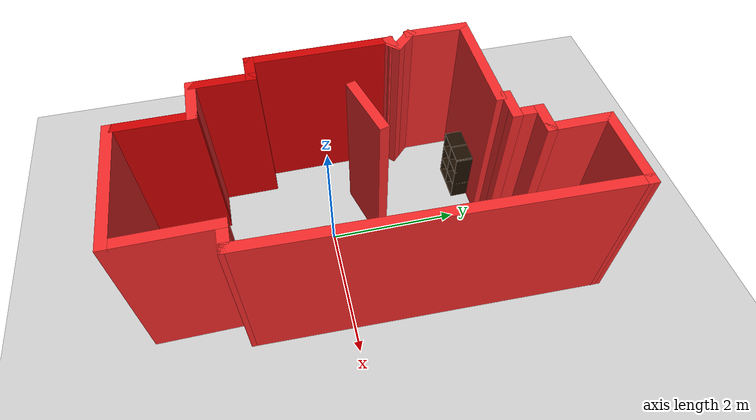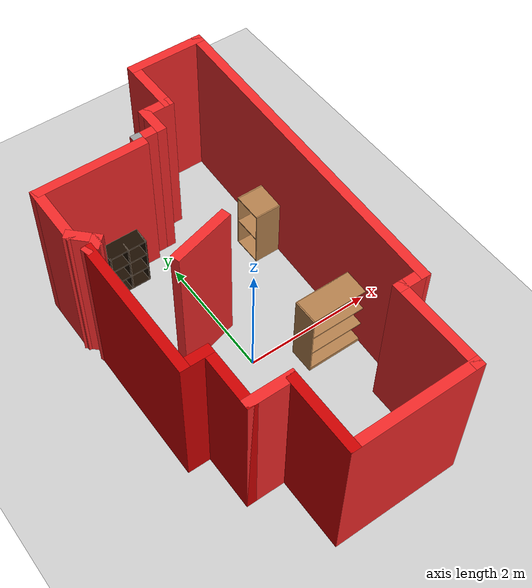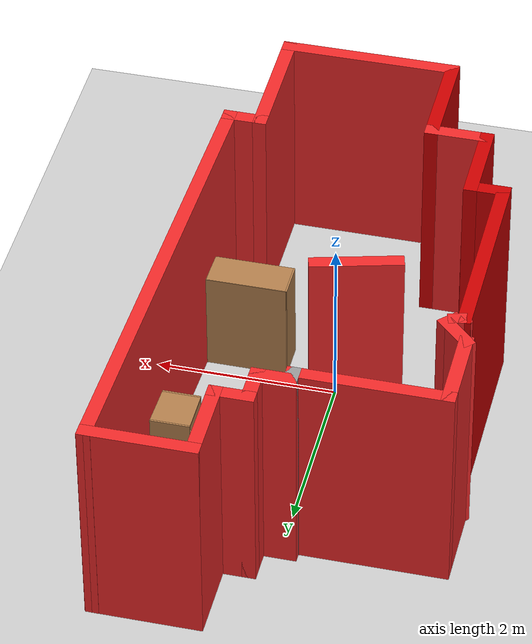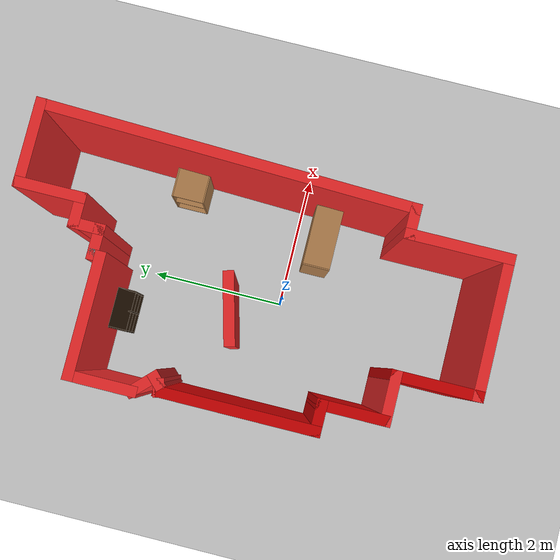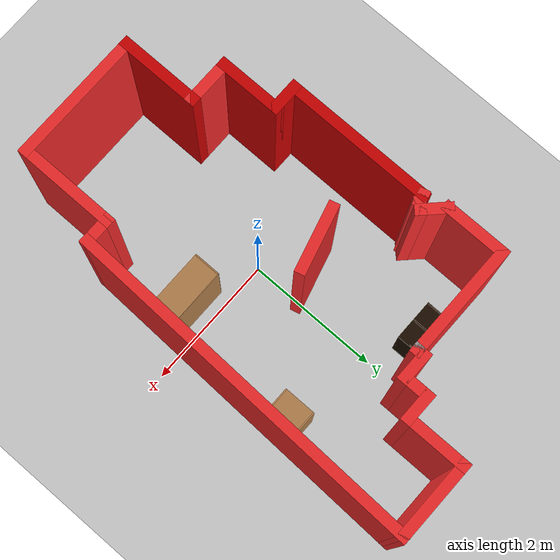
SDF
<sdf version="1.6">
 <world name="default">
  <light name="sun" type="directional">
   <pose>0 0 10 0 -0 0</pose>
   <diffuse>0.8 0.8 0.8 1</diffuse>
   <specular>0.2 0.2 0.2 1</specular>
   <attenuation>
    <range>1000</range>
    <constant>0.9</constant>
    <linear>0.01</linear>
    <quadratic>0.001</quadratic>
   </attenuation>
   <direction>-0.5 0.1 -0.9</direction>
  </light>
  <model name="ground_plane">
   <static>1</static>
   <link name="link">
    <collision name="collision">
     <geometry><plane><normal>0 0 1</normal><size>100 100</size></plane></geometry>
     <surface><friction><ode><mu>100</mu><mu2>50</mu2></ode></friction></surface>
    </collision>
    <visual name="visual">
     <cast_shadows>0</cast_shadows>
     <geometry><plane><normal>0 0 1</normal><size>100 100</size></plane></geometry>
     <material>
      <script><uri>file://media/materials/scripts/gazebo.material</uri><name>Gazebo/Grey</name></script>
     </material>
    </visual>
   </link>
  </model>
  <gravity>0 0 -9.8</gravity>
  <magnetic_field>6e-06 2.3e-05 -4.2e-05</magnetic_field>
  <atmosphere type="adiabatic"/>
  <physics name="default_physics" default="0" type="ode">
   <max_step_size>0.001</max_step_size>
   <real_time_factor>1</real_time_factor>
   <real_time_update_rate>1000</real_time_update_rate>
  </physics>
  <scene><ambient>0.4 0.4 0.4 1</ambient><background>0.7 0.7 0.7 1</background><shadows>1</shadows></scene>
  <spherical_coordinates>
   <surface_model>EARTH_WGS84</surface_model>
   <latitude_deg>0</latitude_deg>
   <longitude_deg>0</longitude_deg>
   <elevation>0</elevation>
   <heading_deg>0</heading_deg>
  </spherical_coordinates>
  <model name="map_2">
   <pose>-0.028238 0.490679 0 0 -0 0</pose>
   <link name="Wall_10">
    <collision name="Wall_10_Collision">
     <geometry><box><size>0.5 0.15 2.5</size></box></geometry>
     <pose>0 0 1.25 0 -0 0</pose>
    </collision>
    <visual name="Wall_10_Visual">
     <pose>0 0 1.25 0 -0 0</pose>
     <geometry><box><size>0.5 0.15 2.5</size></box></geometry>
     <material>
      <script><uri>file://media/materials/scripts/gazebo.material</uri><name>Gazebo/Grey</name></script>
      <ambient>0.937255 0.160784 0.160784 1</ambient>
     </material>
     <meta><layer>0</layer></meta>
    </visual>
    <pose>-1.56193 0.997091 0 0 -0 -0.785398</pose>
   </link>
   <link name="Wall_11">
    <collision name="Wall_11_Collision">
     <geometry><box><size>0.25 0.15 2.5</size></box></geometry>
     <pose>0 0 1.25 0 -0 0</pose>
    </collision>
    <visual name="Wall_11_Visual">
     <pose>0 0 1.25 0 -0 0</pose>
     <geometry><box><size>0.25 0.15 2.5</size></box></geometry>
     <material>
      <script><uri>file://media/materials/scripts/gazebo.material</uri><name>Gazebo/Grey</name></script>
      <ambient>0.937255 0.160784 0.160784 1</ambient>
     </material>
     <meta><layer>0</layer></meta>
    </visual>
    <pose>-1.47354 0.837992 0 0 -0 -2.35619</pose>
   </link>
   <link name="Wall_12">
    <collision name="Wall_12_Collision">
     <geometry><box><size>0.25 0.15 2.5</size></box></geometry>
     <pose>0 0 1.25 0 -0 0</pose>
    </collision>
    <visual name="Wall_12_Visual">
     <pose>0 0 1.25 0 -0 0</pose>
     <geometry><box><size>0.25 0.15 2.5</size></box></geometry>
     <material>
      <script><uri>file://media/materials/scripts/gazebo.material</uri><name>Gazebo/Grey</name></script>
      <ambient>0.937255 0.160784 0.160784 1</ambient>
     </material>
     <meta><layer>0</layer></meta>
    </visual>
    <pose>-1.55719 0.789695 0 0 -0 -2.87979</pose>
   </link>
   <link name="Wall_13">
    <collision name="Wall_13_Collision">
     <geometry><box><size>2.25 0.15 2.5</size></box></geometry>
     <pose>0 0 1.25 0 -0 0</pose>
    </collision>
    <visual name="Wall_13_Visual">
     <pose>0 0 1.25 0 -0 0</pose>
     <geometry><box><size>2.25 0.15 2.5</size></box></geometry>
     <material>
      <script><uri>file://media/materials/scripts/gazebo.material</uri><name>Gazebo/Grey</name></script>
      <ambient>0.8 0 0 1</ambient>
     </material>
     <meta><layer>0</layer></meta>
    </visual>
    <pose>-1.60549 -0.273245 0 0 -0 -1.5708</pose>
   </link>
   <link name="Wall_14">
    <collision name="Wall_14_Collision">
     <geometry><box><size>0.5 0.15 2.5</size></box></geometry>
     <pose>0 0 1.25 0 -0 0</pose>
    </collision>
    <visual name="Wall_14_Visual">
     <pose>0 0 1.25 0 -0 0</pose>
     <geometry><box><size>0.5 0.15 2.5</size></box></geometry>
     <material>
      <script><uri>file://media/materials/scripts/gazebo.material</uri><name>Gazebo/Grey</name></script>
      <ambient>0.8 0 0 1</ambient>
     </material>
     <meta><layer>0</layer></meta>
    </visual>
    <pose>-1.43049 -1.32325 0 0 -0 0</pose>
   </link>
   <link name="Wall_16">
    <collision name="Wall_16_Collision">
     <geometry><box><size>1 0.15 2.5</size></box></geometry>
     <pose>0 0 1.25 0 -0 0</pose>
    </collision>
    <visual name="Wall_16_Visual">
     <pose>0 0 1.25 0 -0 0</pose>
     <geometry><box><size>1 0.15 2.5</size></box></geometry>
     <material>
      <script><uri>file://media/materials/scripts/gazebo.material</uri><name>Gazebo/Grey</name></script>
      <ambient>0.8 0 0 1</ambient>
     </material>
     <meta><layer>0</layer></meta>
    </visual>
    <pose>-1.25549 -1.74825 0 0 -0 -1.5708</pose>
   </link>
   <link name="Wall_17">
    <collision name="Wall_17_Collision">
     <geometry><box><size>0.75 0.15 2.5</size></box></geometry>
     <pose>0 0 1.25 0 -0 0</pose>
    </collision>
    <visual name="Wall_17_Visual">
     <pose>0 0 1.25 0 -0 0</pose>
     <geometry><box><size>0.75 0.15 2.5</size></box></geometry>
     <material>
      <script><uri>file://media/materials/scripts/gazebo.material</uri><name>Gazebo/Grey</name></script>
      <ambient>0.937255 0.160784 0.160784 1</ambient>
     </material>
     <meta><layer>0</layer></meta>
    </visual>
    <pose>-0.955488 -2.17325 0 0 -0 0</pose>
   </link>
   <link name="Wall_18">
    <collision name="Wall_18_Collision">
     <geometry><box><size>1.25 0.15 2.5</size></box></geometry>
     <pose>0 0 1.25 0 -0 0</pose>
    </collision>
    <visual name="Wall_18_Visual">
     <pose>0 0 1.25 0 -0 0</pose>
     <geometry><box><size>1.25 0.15 2.5</size></box></geometry>
     <material>
      <script><uri>file://media/materials/scripts/gazebo.material</uri><name>Gazebo/Grey</name></script>
      <ambient>0.8 0 0 1</ambient>
     </material>
     <meta><layer>0</layer></meta>
    </visual>
    <pose>-0.655488 -2.72324 0 0 -0 -1.5708</pose>
   </link>
   <link name="Wall_19">
    <collision name="Wall_19_Collision">
     <geometry><box><size>2 0.15 2.5</size></box></geometry>
     <pose>0 0 1.25 0 -0 0</pose>
    </collision>
    <visual name="Wall_19_Visual">
     <pose>0 0 1.25 0 -0 0</pose>
     <geometry><box><size>2 0.15 2.5</size></box></geometry>
     <material>
      <script><uri>file://media/materials/scripts/gazebo.material</uri><name>Gazebo/Grey</name></script>
      <ambient>0.937255 0.160784 0.160784 1</ambient>
     </material>
     <meta><layer>0</layer></meta>
    </visual>
    <pose>0.269512 -3.27325 0 0 -0 0</pose>
   </link>
   <link name="Wall_2">
    <collision name="Wall_2_Collision">
     <geometry><box><size>1.25 0.15 2.5</size></box></geometry>
     <pose>0 0 1.25 0 -0 0</pose>
    </collision>
    <visual name="Wall_2_Visual">
     <pose>0 0 1.25 0 -0 0</pose>
     <geometry><box><size>1.25 0.15 2.5</size></box></geometry>
     <material>
      <script><uri>file://media/materials/scripts/gazebo.material</uri><name>Gazebo/Grey</name></script>
      <ambient>0.937255 0.160784 0.160784 1</ambient>
     </material>
     <meta><layer>0</layer></meta>
    </visual>
    <pose>1.16433 3.27083 0 0 -0 3.14159</pose>
   </link>
   <link name="Wall_20">
    <collision name="Wall_20_Collision">
     <geometry><box><size>1.5 0.15 2.5</size></box></geometry>
     <pose>0 0 1.25 0 -0 0</pose>
    </collision>
    <visual name="Wall_20_Visual">
     <pose>0 0 1.25 0 -0 0</pose>
     <geometry><box><size>1.5 0.15 2.5</size></box></geometry>
     <material>
      <script><uri>file://media/materials/scripts/gazebo.material</uri><name>Gazebo/Grey</name></script>
      <ambient>0.937255 0.160784 0.160784 1</ambient>
     </material>
     <meta><layer>0</layer></meta>
    </visual>
    <pose>1.19451 -2.59824 0 0 -0 1.5708</pose>
   </link>
   <link name="Wall_21">
    <collision name="Wall_21_Collision">
     <geometry><box><size>0.5 0.15 2.5</size></box></geometry>
     <pose>0 0 1.25 0 -0 0</pose>
    </collision>
    <visual name="Wall_21_Visual">
     <pose>0 0 1.25 0 -0 0</pose>
     <geometry><box><size>0.5 0.15 2.5</size></box></geometry>
     <material>
      <script><uri>file://media/materials/scripts/gazebo.material</uri><name>Gazebo/Grey</name></script>
      <ambient>0.937255 0.160784 0.160784 1</ambient>
     </material>
     <meta><layer>0</layer></meta>
    </visual>
    <pose>1.36951 -1.92325 0 0 -0 0</pose>
   </link>
   <link name="Wall_26">
    <collision name="Wall_26_Collision">
     <geometry><box><size>5.34685 0.15 2.5</size></box></geometry>
     <pose>0 0 1.25 0 -0 0</pose>
    </collision>
    <visual name="Wall_26_Visual">
     <pose>0 0 1.25 0 -0 0</pose>
     <geometry><box><size>5.34685 0.15 2.5</size></box></geometry>
     <material>
      <script><uri>file://media/materials/scripts/gazebo.material</uri><name>Gazebo/Grey</name></script>
      <ambient>0.937255 0.160784 0.160784 1</ambient>
     </material>
     <meta><layer>0</layer></meta>
    </visual>
    <pose>1.62942 0.673794 0 0 -0 1.53811</pose>
   </link>
   <link name="Wall_28">
    <collision name="Wall_28_Collision">
     <geometry><box><size>1 0.15 2.5</size></box></geometry>
     <pose>0 0 1.25 0 -0 0</pose>
    </collision>
    <visual name="Wall_28_Visual">
     <pose>0 0 1.25 0 -0 0</pose>
     <geometry><box><size>1 0.15 2.5</size></box></geometry>
     <material>
      <script><uri>file://media/materials/scripts/gazebo.material</uri><name>Gazebo/Grey</name></script>
      <ambient>0.937255 0.160784 0.160784 1</ambient>
     </material>
     <meta><layer>0</layer></meta>
    </visual>
    <pose>-0.336228 0.155767 0 0 -0 0.261799</pose>
   </link>
   <link name="Wall_3">
    <collision name="Wall_3_Collision">
     <geometry><box><size>1 0.15 2.5</size></box></geometry>
     <pose>0 0 1.25 0 -0 0</pose>
    </collision>
    <visual name="Wall_3_Visual">
     <pose>0 0 1.25 0 -0 0</pose>
     <geometry><box><size>1 0.15 2.5</size></box></geometry>
     <material>
      <script><uri>file://media/materials/scripts/gazebo.material</uri><name>Gazebo/Grey</name></script>
      <ambient>0.937255 0.160784 0.160784 1</ambient>
     </material>
     <meta><layer>0</layer></meta>
    </visual>
    <pose>0.614328 2.84583 0 0 -0 -1.5708</pose>
   </link>
   <link name="Wall_4">
    <collision name="Wall_4_Collision">
     <geometry><box><size>0.5 0.15 2.5</size></box></geometry>
     <pose>0 0 1.25 0 -0 0</pose>
    </collision>
    <visual name="Wall_4_Visual">
     <pose>0 0 1.25 0 -0 0</pose>
     <geometry><box><size>0.5 0.15 2.5</size></box></geometry>
     <material>
      <script><uri>file://media/materials/scripts/gazebo.material</uri><name>Gazebo/Grey</name></script>
      <ambient>0.937255 0.160784 0.160784 1</ambient>
     </material>
     <meta><layer>0</layer></meta>
    </visual>
    <pose>0.439328 2.42083 0 0 -0 3.14159</pose>
   </link>
   <link name="Wall_5">
    <collision name="Wall_5_Collision">
     <geometry><box><size>0.5 0.15 2.5</size></box></geometry>
     <pose>0 0 1.25 0 -0 0</pose>
    </collision>
    <visual name="Wall_5_Visual">
     <pose>0 0 1.25 0 -0 0</pose>
     <geometry><box><size>0.5 0.15 2.5</size></box></geometry>
     <material>
      <script><uri>file://media/materials/scripts/gazebo.material</uri><name>Gazebo/Grey</name></script>
      <ambient>0.937255 0.160784 0.160784 1</ambient>
     </material>
     <meta><layer>0</layer></meta>
    </visual>
    <pose>0.264328 2.24583 0 0 -0 -1.5708</pose>
   </link>
   <link name="Wall_6">
    <collision name="Wall_6_Collision">
     <geometry><box><size>0.5 0.15 2.5</size></box></geometry>
     <pose>0 0 1.25 0 -0 0</pose>
    </collision>
    <visual name="Wall_6_Visual">
     <pose>0 0 1.25 0 -0 0</pose>
     <geometry><box><size>0.5 0.15 2.5</size></box></geometry>
     <material>
      <script><uri>file://media/materials/scripts/gazebo.material</uri><name>Gazebo/Grey</name></script>
      <ambient>0.937255 0.160784 0.160784 1</ambient>
     </material>
     <meta><layer>0</layer></meta>
    </visual>
    <pose>0.089328 2.07084 0 0 -0 3.14159</pose>
   </link>
   <link name="Wall_7">
    <collision name="Wall_7_Collision">
     <geometry><box><size>0.25 0.15 2.5</size></box></geometry>
     <pose>0 0 1.25 0 -0 0</pose>
    </collision>
    <visual name="Wall_7_Visual">
     <pose>0 0 1.25 0 -0 0</pose>
     <geometry><box><size>0.25 0.15 2.5</size></box></geometry>
     <material>
      <script><uri>file://media/materials/scripts/gazebo.material</uri><name>Gazebo/Grey</name></script>
      <ambient>1 1 1 1</ambient>
     </material>
     <meta><layer>0</layer></meta>
    </visual>
    <pose>-0.085672 2.02083 0 0 -0 -1.5708</pose>
   </link>
   <link name="Wall_8">
    <collision name="Wall_8_Collision">
     <geometry><box><size>1.75 0.15 2.5</size></box></geometry>
     <pose>0 0 1.25 0 -0 0</pose>
    </collision>
    <visual name="Wall_8_Visual">
     <pose>0 0 1.25 0 -0 0</pose>
     <geometry><box><size>1.75 0.15 2.5</size></box></geometry>
     <material>
      <script><uri>file://media/materials/scripts/gazebo.material</uri><name>Gazebo/Grey</name></script>
      <ambient>0.937255 0.160784 0.160784 1</ambient>
     </material>
     <meta><layer>0</layer></meta>
    </visual>
    <pose>-0.885672 1.97083 0 0 -0 3.14159</pose>
   </link>
   <link name="Wall_9">
    <collision name="Wall_9_Collision">
     <geometry><box><size>1 0.15 2.5</size></box></geometry>
     <pose>0 0 1.25 0 -0 0</pose>
    </collision>
    <visual name="Wall_9_Visual">
     <pose>0 0 1.25 0 -0 0</pose>
     <geometry><box><size>1 0.15 2.5</size></box></geometry>
     <material>
      <script><uri>file://media/materials/scripts/gazebo.material</uri><name>Gazebo/Grey</name></script>
      <ambient>0.937255 0.160784 0.160784 1</ambient>
     </material>
     <meta><layer>0</layer></meta>
    </visual>
    <pose>-1.68567 1.54583 0 0 -0 -1.5708</pose>
   </link>
   <static>1</static>
  </model>
  <model name="6_Cube_StorageE">
   <link name="Wall_0">
    <pose>0 0 0.01 0 -0 0</pose>
    <inertial>
     <mass>1.6201</mass>
     <inertia><ixx>0.0119</ixx><iyy>0.0631</iyy><izz>0.0513</izz><ixy>0</ixy><ixz>0</ixz><iyz>0</iyz></inertia>
    </inertial>
    <collision name="Wall_0_Collision"><geometry><box><size>0.616 0.296 0.02</size></box></geometry></collision>
    <visual name="Wall_0_Visual">
     <geometry><box><size>0.616 0.296 0.02</size></box></geometry>
     <material>
      <script><uri>file://media/materials/scripts/gazebo.material</uri><name>Gazebo/Grey</name></script>
      <ambient>0.105882 0.0509804 0 1</ambient>
     </material>
    </visual>
   </link>
   <joint name="0_2" type="fixed">
    <pose>-0.308 0 0 0 -0 0</pose>
    <parent>Wall_2</parent>
    <child>Wall_0</child>
    <axis>
     <xyz>1 0 0</xyz>
     <use_parent_model_frame>0</use_parent_model_frame>
     <limit><lower>-1e+16</lower><upper>1e+16</upper></limit>
    </axis>
   </joint>
   <joint name="0_12" type="fixed">
    <parent>Wall_12</parent>
    <child>Wall_0</child>
    <axis>
     <xyz>0 0 1</xyz>
     <use_parent_model_frame>0</use_parent_model_frame>
     <limit><lower>-1e+16</lower><upper>1e+16</upper></limit>
    </axis>
   </joint>
   <joint name="0_4" type="fixed">
    <pose>0.308 0 0 0 -0 0</pose>
    <parent>Wall_4</parent>
    <child>Wall_0</child>
    <axis>
     <xyz>1 0 0</xyz>
     <use_parent_model_frame>0</use_parent_model_frame>
     <limit><lower>-1e+16</lower><upper>1e+16</upper></limit>
    </axis>
   </joint>
   <link name="Wall_10">
    <pose>0 0 0.61 0 -0 0</pose>
    <inertial>
     <mass>1.6201</mass>
     <inertia><ixx>0.0119</ixx><iyy>0.0631</iyy><izz>0.0513</izz><ixy>0</ixy><ixz>0</ixz><iyz>0</iyz></inertia>
    </inertial>
    <collision name="Wall_10_Collision"><geometry><box><size>0.616 0.296 0.02</size></box></geometry></collision>
    <visual name="Wall_10_Visual">
     <geometry><box><size>0.616 0.296 0.02</size></box></geometry>
     <material>
      <script><uri>file://media/materials/scripts/gazebo.material</uri><name>Gazebo/Grey</name></script>
      <ambient>0.105882 0.0509804 0 1</ambient>
     </material>
    </visual>
   </link>
   <joint name="10_2" type="fixed">
    <pose>-0.308 0 0 0 -0 0</pose>
    <parent>Wall_2</parent>
    <child>Wall_10</child>
    <axis>
     <xyz>1 0 0</xyz>
     <use_parent_model_frame>0</use_parent_model_frame>
     <limit><lower>-1e+16</lower><upper>1e+16</upper></limit>
    </axis>
   </joint>
   <joint name="10_12" type="fixed">
    <parent>Wall_12</parent>
    <child>Wall_10</child>
    <axis>
     <xyz>0 0 1</xyz>
     <use_parent_model_frame>0</use_parent_model_frame>
     <limit><lower>-1e+16</lower><upper>1e+16</upper></limit>
    </axis>
   </joint>
   <joint name="10_4" type="fixed">
    <pose>0.308 0 0 0 -0 0</pose>
    <parent>Wall_4</parent>
    <child>Wall_10</child>
    <axis>
     <xyz>1 0 0</xyz>
     <use_parent_model_frame>0</use_parent_model_frame>
     <limit><lower>-1e+16</lower><upper>1e+16</upper></limit>
    </axis>
   </joint>
   <link name="Wall_12">
    <pose>0 0 0.4575 0 -0 0</pose>
    <inertial>
     <mass>2.4065</mass>
     <inertia><ixx>0.0177</ixx><iyy>0.1855</iyy><izz>0.168</izz><ixy>0</ixy><ixz>0</ixz><iyz>0</iyz></inertia>
    </inertial>
    <collision name="Wall_12_Collision"><geometry><box><size>0.02 0.296 0.915</size></box></geometry></collision>
    <visual name="Wall_12_Visual">
     <geometry><box><size>0.02 0.296 0.915</size></box></geometry>
     <material>
      <script><uri>file://media/materials/scripts/gazebo.material</uri><name>Gazebo/Grey</name></script>
      <ambient>0.105882 0.0509804 0 1</ambient>
     </material>
    </visual>
   </link>
   <link name="Wall_2">
    <pose>-0.298 0 0.4575 0 -0 0</pose>
    <inertial>
     <mass>2.4065</mass>
     <inertia><ixx>0.0177</ixx><iyy>0.1855</iyy><izz>0.168</izz><ixy>0</ixy><ixz>0</ixz><iyz>0</iyz></inertia>
    </inertial>
    <collision name="Wall_2_Collision"><geometry><box><size>0.02 0.296 0.915</size></box></geometry></collision>
    <visual name="Wall_2_Visual">
     <geometry><box><size>0.02 0.296 0.915</size></box></geometry>
     <material>
      <script><uri>file://media/materials/scripts/gazebo.material</uri><name>Gazebo/Grey</name></script>
      <ambient>0.105882 0.0509804 0 1</ambient>
     </material>
    </visual>
   </link>
   <link name="Wall_4">
    <pose>0.298 0 0.4575 0 -0 0</pose>
    <inertial>
     <mass>2.4065</mass>
     <inertia><ixx>0.0177</ixx><iyy>0.1855</iyy><izz>0.168</izz><ixy>0</ixy><ixz>0</ixz><iyz>0</iyz></inertia>
    </inertial>
    <collision name="Wall_4_Collision"><geometry><box><size>0.02 0.296 0.915</size></box></geometry></collision>
    <visual name="Wall_4_Visual">
     <geometry><box><size>0.02 0.296 0.915</size></box></geometry>
     <material>
      <script><uri>file://media/materials/scripts/gazebo.material</uri><name>Gazebo/Grey</name></script>
      <ambient>0.105882 0.0509804 0 1</ambient>
     </material>
    </visual>
   </link>
   <link name="Wall_6">
    <pose>0 0 0.905 0 -0 0</pose>
    <inertial>
     <mass>1.6201</mass>
     <inertia><ixx>0.0119</ixx><iyy>0.0631</iyy><izz>0.0513</izz><ixy>0</ixy><ixz>0</ixz><iyz>0</iyz></inertia>
    </inertial>
    <collision name="Wall_6_Collision"><geometry><box><size>0.616 0.296 0.02</size></box></geometry></collision>
    <visual name="Wall_6_Visual">
     <geometry><box><size>0.616 0.296 0.02</size></box></geometry>
     <material>
      <script><uri>file://media/materials/scripts/gazebo.material</uri><name>Gazebo/Grey</name></script>
      <ambient>0.105882 0.0509804 0 1</ambient>
     </material>
    </visual>
   </link>
   <joint name="6_2" type="fixed">
    <pose>-0.308 0 0 0 -0 0</pose>
    <parent>Wall_2</parent>
    <child>Wall_6</child>
    <axis>
     <xyz>2 0 0</xyz>
     <use_parent_model_frame>0</use_parent_model_frame>
     <limit><lower>-1e+16</lower><upper>1e+16</upper></limit>
    </axis>
   </joint>
   <joint name="6_12" type="fixed">
    <parent>Wall_12</parent>
    <child>Wall_6</child>
    <axis>
     <xyz>0 0 1</xyz>
     <use_parent_model_frame>0</use_parent_model_frame>
     <limit><lower>-1e+16</lower><upper>1e+16</upper></limit>
    </axis>
   </joint>
   <joint name="6_4" type="fixed">
    <pose>0.308 0 0 0 -0 0</pose>
    <parent>Wall_4</parent>
    <child>Wall_6</child>
    <axis>
     <xyz>1 0 0</xyz>
     <use_parent_model_frame>0</use_parent_model_frame>
     <limit><lower>-1e+16</lower><upper>1e+16</upper></limit>
    </axis>
   </joint>
   <link name="Wall_8">
    <pose>0 0 0.305 0 -0 0</pose>
    <inertial>
     <mass>1.6201</mass>
     <inertia><ixx>0.0119</ixx><iyy>0.0631</iyy><izz>0.0513</izz><ixy>0</ixy><ixz>0</ixz><iyz>0</iyz></inertia>
    </inertial>
    <collision name="Wall_8_Collision"><geometry><box><size>0.616 0.296 0.02</size></box></geometry></collision>
    <visual name="Wall_8_Visual">
     <geometry><box><size>0.616 0.296 0.02</size></box></geometry>
     <material>
      <script><uri>file://media/materials/scripts/gazebo.material</uri><name>Gazebo/Grey</name></script>
      <ambient>0.105882 0.0509804 0 1</ambient>
     </material>
    </visual>
   </link>
   <joint name="8_2" type="fixed">
    <pose>-0.308 0 0 0 -0 0</pose>
    <parent>Wall_2</parent>
    <child>Wall_8</child>
    <axis>
     <xyz>1 0 0</xyz>
     <use_parent_model_frame>0</use_parent_model_frame>
     <limit><lower>-1e+16</lower><upper>1e+16</upper></limit>
    </axis>
   </joint>
   <joint name="8_12" type="fixed">
    <parent>Wall_12</parent>
    <child>Wall_8</child>
    <axis>
     <xyz>0 0 1</xyz>
     <use_parent_model_frame>0</use_parent_model_frame>
     <limit><lower>-1e+16</lower><upper>1e+16</upper></limit>
    </axis>
   </joint>
   <joint name="8_4" type="fixed">
    <pose>0.308 0 0 0 -0 0</pose>
    <parent>Wall_4</parent>
    <child>Wall_8</child>
    <axis>
     <xyz>1 0 0</xyz>
     <use_parent_model_frame>0</use_parent_model_frame>
     <limit><lower>-1e+16</lower><upper>1e+16</upper></limit>
    </axis>
   </joint>
   <static>1</static>
   <pose>-0.689367 2.26455 0 0 -0 0</pose>
  </model>
  <model name="bookshelf">
   <static>1</static>
   <link name="link">
    <inertial><mass>1</mass></inertial>
    <collision name="back">
     <pose>0 0.005 0.6 0 -0 0</pose>
     <geometry><box><size>0.9 0.01 1.2</size></box></geometry>
    </collision>
    <visual name="visual1">
     <pose>0 0.005 0.6 0 -0 0</pose>
     <geometry><box><size>0.9 0.01 1.2</size></box></geometry>
     <material>
      <script><uri>file://media/materials/scripts/gazebo.material</uri><name>Gazebo/Wood</name></script>
     </material>
    </visual>
    <collision name="left_side">
     <pose>0.45 -0.195 0.6 0 -0 0</pose>
     <geometry><box><size>0.02 0.4 1.2</size></box></geometry>
    </collision>
    <visual name="visual2">
     <pose>0.45 -0.195 0.6 0 -0 0</pose>
     <geometry><box><size>0.02 0.4 1.2</size></box></geometry>
     <material>
      <script><uri>file://media/materials/scripts/gazebo.material</uri><name>Gazebo/Wood</name></script>
     </material>
    </visual>
    <collision name="right_side">
     <pose>-0.45 -0.195 0.6 0 -0 0</pose>
     <geometry><box><size>0.02 0.4 1.2</size></box></geometry>
    </collision>
    <visual name="visual3">
     <pose>-0.45 -0.195 0.6 0 -0 0</pose>
     <geometry><box><size>0.02 0.4 1.2</size></box></geometry>
     <material>
      <script><uri>file://media/materials/scripts/gazebo.material</uri><name>Gazebo/Wood</name></script>
     </material>
    </visual>
    <collision name="bottom">
     <pose>0 -0.195 0.03 0 -0 0</pose>
     <geometry><box><size>0.88 0.4 0.06</size></box></geometry>
    </collision>
    <visual name="visual4">
     <pose>0 -0.195 0.03 0 -0 0</pose>
     <geometry><box><size>0.88 0.4 0.06</size></box></geometry>
     <material>
      <script><uri>file://media/materials/scripts/gazebo.material</uri><name>Gazebo/Wood</name></script>
     </material>
    </visual>
    <collision name="top">
     <pose>0 -0.195 1.19 0 -0 0</pose>
     <geometry><box><size>0.88 0.4 0.02</size></box></geometry>
    </collision>
    <visual name="visual5">
     <pose>0 -0.195 1.19 0 -0 0</pose>
     <geometry><box><size>0.88 0.4 0.02</size></box></geometry>
     <material>
      <script><uri>file://media/materials/scripts/gazebo.material</uri><name>Gazebo/Wood</name></script>
     </material>
    </visual>
    <collision name="low_shelf">
     <pose>0 -0.195 0.43 0 -0 0</pose>
     <geometry><box><size>0.88 0.4 0.02</size></box></geometry>
    </collision>
    <visual name="visual6">
     <pose>0 -0.195 0.43 0 -0 0</pose>
     <geometry><box><size>0.88 0.4 0.02</size></box></geometry>
     <material>
      <script><uri>file://media/materials/scripts/gazebo.material</uri><name>Gazebo/Wood</name></script>
     </material>
    </visual>
    <collision name="high_shelf">
     <pose>0 -0.195 0.8 0 -0 0</pose>
     <geometry><box><size>0.88 0.4 0.02</size></box></geometry>
    </collision>
    <visual name="visual7">
     <pose>0 -0.195 0.8 0 -0 0</pose>
     <geometry><box><size>0.88 0.4 0.02</size></box></geometry>
     <material>
      <script><uri>file://media/materials/scripts/gazebo.material</uri><name>Gazebo/Wood</name></script>
     </material>
    </visual>
   </link>
   <pose>1.03751 -0.177996 0 0 -0 0</pose>
  </model>
  <model name="cabinet">
   <static>1</static>
   <link name="cabinet_bottom_plate">
    <inertial>
     <pose>0 0 -1 0 -0 0</pose>
     <inertia><ixx>2.05</ixx><ixy>0</ixy><ixz>0</ixz><iyy>2.05</iyy><iyz>0</iyz><izz>2.05</izz></inertia>
     <mass>25</mass>
    </inertial>
    <collision name="cabinet_bottom_plate_geom">
     <pose>0 0 0.01 0 -0 0</pose>
     <geometry><box><size>0.45 0.45 0.02</size></box></geometry>
    </collision>
    <visual name="cabinet_bottom_plate_geom_visual">
     <pose>0 0 0.01 0 -0 0</pose>
     <geometry><box><size>0.45 0.45 0.02</size></box></geometry>
     <material>
      <script><uri>file://media/materials/scripts/gazebo.material</uri><name>Gazebo/Wood</name></script>
     </material>
    </visual>
    <collision name="cabinet_bottom_plate_geom_cabinet_back_plate">
     <pose>0.235 0 0.51 0 -0 0</pose>
     <geometry><box><size>0.02 0.45 1.02</size></box></geometry>
    </collision>
    <visual name="cabinet_bottom_plate_geom_cabinet_back_plate_visual">
     <pose>0.235 0 0.51 0 -0 0</pose>
     <geometry><box><size>0.02 0.45 1.02</size></box></geometry>
     <material>
      <script><uri>file://media/materials/scripts/gazebo.material</uri><name>Gazebo/Wood</name></script>
     </material>
    </visual>
    <collision name="cabinet_bottom_plate_geom_cabinet_left_plate">
     <pose>0 0.235 0.51 0 -0 0</pose>
     <geometry><box><size>0.45 0.02 1.02</size></box></geometry>
    </collision>
    <visual name="cabinet_bottom_plate_geom_cabinet_left_plate_visual">
     <pose>0 0.235 0.51 0 -0 0</pose>
     <geometry><box><size>0.45 0.02 1.02</size></box></geometry>
     <material>
      <script><uri>file://media/materials/scripts/gazebo.material</uri><name>Gazebo/Wood</name></script>
     </material>
    </visual>
    <collision name="cabinet_bottom_plate_geom_cabinet_middle_plate">
     <pose>0 0 0.51 0 -0 0</pose>
     <geometry><box><size>0.45 0.45 0.02</size></box></geometry>
    </collision>
    <visual name="cabinet_bottom_plate_geom_cabinet_middle_plate_visual">
     <pose>0 0 0.51 0 -0 0</pose>
     <geometry><box><size>0.45 0.45 0.02</size></box></geometry>
     <material>
      <script><uri>file://media/materials/scripts/gazebo.material</uri><name>Gazebo/Wood</name></script>
     </material>
    </visual>
    <collision name="cabinet_bottom_plate_geom_cabinet_right_plate">
     <pose>0 -0.235 0.51 0 -0 0</pose>
     <geometry><box><size>0.45 0.02 1.02</size></box></geometry>
    </collision>
    <visual name="cabinet_bottom_plate_geom_cabinet_right_plate_visual">
     <pose>0 -0.235 0.51 0 -0 0</pose>
     <geometry><box><size>0.45 0.02 1.02</size></box></geometry>
     <material>
      <script><uri>file://media/materials/scripts/gazebo.material</uri><name>Gazebo/Wood</name></script>
     </material>
    </visual>
    <collision name="cabinet_bottom_plate_geom_cabinet_top_plate">
     <pose>0 0 1.01 0 -0 0</pose>
     <geometry><box><size>0.45 0.45 0.02</size></box></geometry>
    </collision>
    <visual name="cabinet_bottom_plate_geom_cabinet_top_plate_visual">
     <pose>0 0 1.01 0 -0 0</pose>
     <geometry><box><size>0.45 0.45 0.02</size></box></geometry>
     <material>
      <script><uri>file://media/materials/scripts/gazebo.material</uri><name>Gazebo/Wood</name></script>
     </material>
    </visual>
   </link>
   <pose>1.34185 1.70956 0 0 -0 0</pose>
  </model>
 </world>
</sdf>
